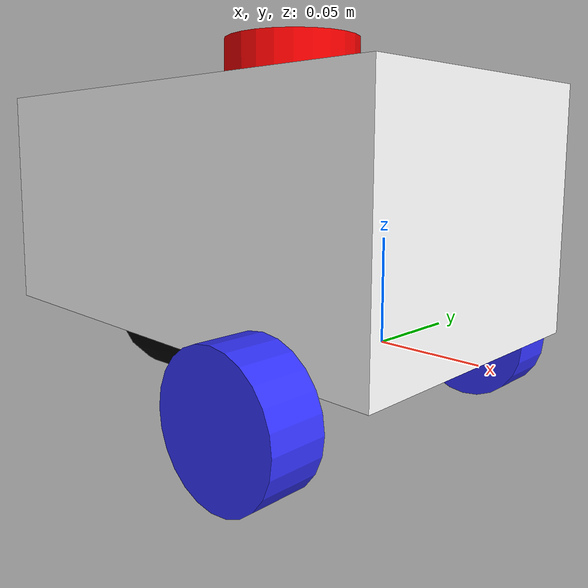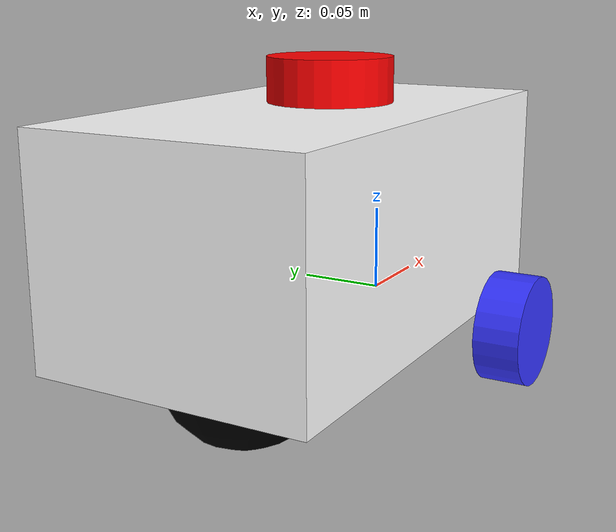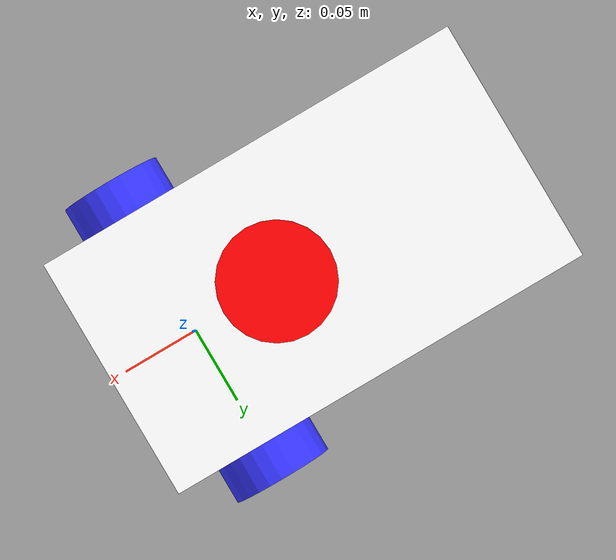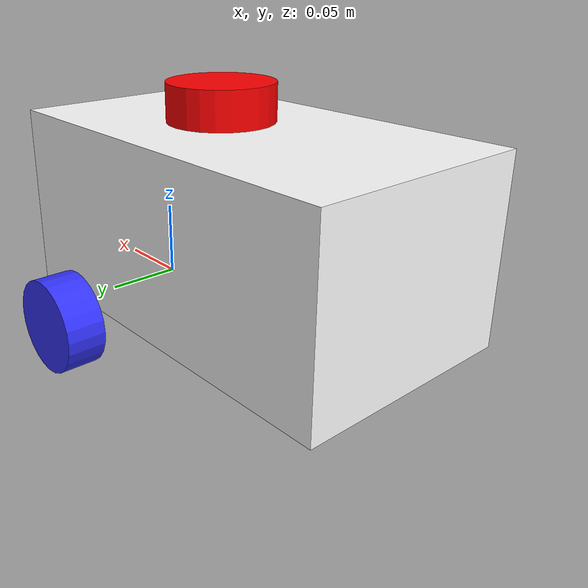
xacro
<?xml version="1.0"?>
<robot xmlns:xacro="http://www.ros.org/wiki/xacro">

    <xacro:include filename="inertial_macros.xacro"/>

    <material name="white">
        <color rgba="1 1 1 1"/>
    </material>

    <material name="orange">
        <color rgba="1 0.3 0.1 1"/>
    </material>

    <material name="blue">
        <color rgba="0.2 0.2 1 1"/>
    </material>

    <material name="black">
        <color rgba="0 0 0 1"/>
    </material>

    <material name="red">
        <color rgba="1 0 0 1"/>
    </material>

    <!-- BASE LINK -->

    <link name="base_footprint"/>

    <joint name="base_footprint_joint" type="fixed">
        <parent link="base_footprint"/>
        <child link="base_link"/>
        <origin xyz="0 0 0" rpy="0 0 0"/>
    </joint>

    <link name="base_link">
        <inertial>
            <origin xyz="0 0 0" rpy="0 0 0"/>
            <mass value="10.0"/>
            <inertia
            ixx="0.05" ixy="0.0" ixz="0.0"
            iyy="0.05" iyz="0.0"
            izz="0.05"/>
        </inertial>
    </link>

    <!-- CHASSIS LINK -->

    <joint name="chassis_joint" type="fixed">
        <parent link="base_link"/>
        <child link="chassis_link"/>
        <origin xyz="0.0508 0 0" rpy="0 0 0"/> <!-- Offset the chassis slightly back by 5.08cm-->
    </joint>

    <link name="chassis_link">
        <visual>
            <origin xyz="-0.13462 0 0.06096" rpy="0 0 0"/>
            <geometry>
                <box size="0.26924 0.1524 0.12192"/>
            </geometry>
            <material name="white"/>
        </visual>
        <collision>
            <origin xyz="-0.13462 0 0.06096" rpy="0 0 0"/>
            <geometry>
                <box size="0.26924 0.1524 0.12192"/>
            </geometry>
        </collision>
        <xacro:inertial_box mass="0.5" x="0.26924" y="0.1524" z="0.12192">
            <origin xyz="-0.13462 0 0.06096" rpy="0 0 0"/>
        </xacro:inertial_box>
    </link>

    <!-- LEFT WHEEL LINK -->

    <joint name="left_wheel_joint" type="continuous">
        <parent link="base_link"/>
        <child link="left_wheel_link"/>
        <origin xyz="0 -0.09144 -0.0127" rpy="0 0 0"/> <!-- Rotate wheel -->
        <axis xyz="0 1 0"/>
    </joint>

    <link name="left_wheel_link">
        <visual>
            <origin rpy="1.57079632679 0 0"/>
            <geometry>
                <cylinder radius="0.0325" length="0.027"/>
            </geometry>
            <material name="blue"/>
        </visual>
        <collision>
            <geometry>
                <cylinder radius="0.0325" length="0.027"/>
            </geometry>
        </collision>
        <xacro:inertial_cylinder mass="0.1" length="0.027" radius="0.035">
            <origin xyz="0 0 0" rpy="0 0 0"/>
        </xacro:inertial_cylinder>
    </link>

    <!-- RIGHT WHEEL LINK -->

    <joint name="right_wheel_joint" type="continuous">
        <parent link="base_link"/>
        <child link="right_wheel_link"/>
        <origin xyz="0 0.09144 -0.0127" rpy="0 0 0"/> <!-- Rotate wheel -->
        <axis xyz="0 1 0"/>
    </joint>

    <link name="right_wheel_link">
        <visual>
            <origin rpy="1.57079632679 0 0"/>
            <geometry>
                <cylinder radius="0.0325" length="0.027"/>
            </geometry>
            <material name="blue"/>
        </visual>
        <collision>
            <geometry>
                <cylinder radius="0.0325" length="0.027"/>
            </geometry>
        </collision>
        <xacro:inertial_cylinder mass="0.1" length="0.027" radius="0.035">
            <origin xyz="0 0 0" rpy="0 0 0"/>
        </xacro:inertial_cylinder>
    </link>

    <!-- CASTER WHEEL LINK -->

    <joint name="caster_wheel_joint" type="fixed">
        <parent link="base_link"/>
        <child link="caster_wheel_link"/>
        <origin xyz="-0.15 0 0" rpy="0 0 0"/>
    </joint>

    <link name="caster_wheel_link">
        <visual>
            <geometry>
                <sphere radius="0.04572"/>
            </geometry>
            <material name="black"/>
        </visual>
        <collision>
            <geometry>
                <sphere radius="0.04572"/>
            </geometry>
            <material name="black"/>
        </collision>
        <xacro:inertial_sphere mass="0.1" radius="0.04572">
            <origin xyz="0 0 0" rpy="0 0 0"/>
        </xacro:inertial_sphere>
    </link>

    <!-- GAZEBO FRICTION -->

    <gazebo reference="left_wheel_link">
        <mu1>1.0</mu1>      <!-- longitudinal friction -->
        <mu2>1.0</mu2>      <!-- lateral friction -->
        <kp>1000000.0</kp>  <!-- contact stiffness -->
        <kd>1.0</kd>        <!-- damping -->
    </gazebo>

    <gazebo reference="right_wheel_link">
        <mu1>1.0</mu1>
        <mu2>1.0</mu2>
        <kp>1000000.0</kp>
        <kd>1.0</kd>
    </gazebo>

    <gazebo reference="caster_wheel_link">
        <mu1>0.001</mu1>
        <mu2>0.001</mu2>
        <kp>1000000.0</kp>
        <kd>1.0</kd>
    </gazebo>

    <!-- LIDAR LINK -->

    <joint name="lidar_joint" type="fixed">
        <parent link="base_link"/>
        <child link="lidar_link"/>
        <origin xyz="-0.06 0 0.13442" rpy="0 0 0"/>
    </joint>

    <link name="lidar_link">
        <visual>
            <geometry>
                <cylinder radius="0.035" length="0.025"/>
            </geometry>
            <material name="red"/>
        </visual>
        <xacro:inertial_cylinder mass="0.140" length="0.025" radius="0.035">
            <origin xyz="0 0 0" rpy="0 0 0"/>
        </xacro:inertial_cylinder>
    </link>

    <plugin
      filename="gz-sim-sensors-system"
      name="gz::sim::systems::Sensors">
      <render_engine>ogre2</render_engine>
    </plugin>

    <gazebo reference="lidar_link">
        <sensor name="lidar_sensor" type="gpu_lidar">
            <pose>0 0 0 0 0 0</pose>

            <always_on>true</always_on>
            <update_rate>10</update_rate>
            <visualize>true</visualize>

            <ray>
                <scan>
                    <horizontal>
                    <samples>360</samples>
                    <resolution>1</resolution>
                    <min_angle>-3.14159</min_angle>
                    <max_angle>3.14159</max_angle>
                    </horizontal>
                </scan>

                <range>
                    <min>0.3</min>
                    <max>12.0</max>
                </range>
            </ray>
        </sensor>
    </gazebo>

    <ros2_control name="GazeboSimSystem" type="system">
        <hardware>
            <plugin>gz_ros2_control/GazeboSimSystem</plugin>
        </hardware>
        <joint name="left_wheel_joint">
            <command_interface name="velocity">
                <param name="min">-1</param>
                <param name="max">1</param>
            </command_interface>
            <state_interface name="velocity"/>
            <state_interface name="position"/>
        </joint>
        <joint name="right_wheel_joint">
            <command_interface name="velocity">
                <param name="min">-1</param>
                <param name="max">1</param>
            </command_interface>
            <state_interface name="velocity"/>
            <state_interface name="position"/>
        </joint>
    </ros2_control>

    <gazebo>
        <plugin filename="gz_ros2_control-system" name="gz_ros2_control::GazeboSimROS2ControlPlugin">
            <parameters>$(find chassis)/config/my_controllers.yaml</parameters>
        </plugin>
    </gazebo>

</robot>
